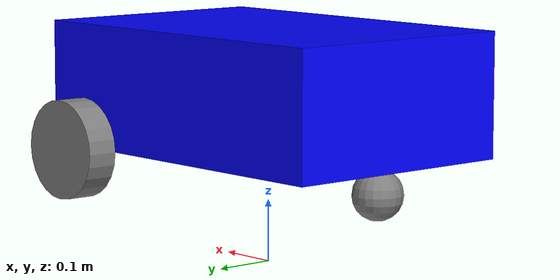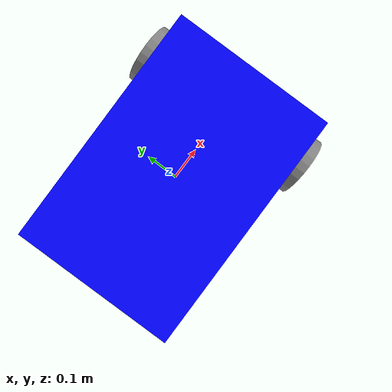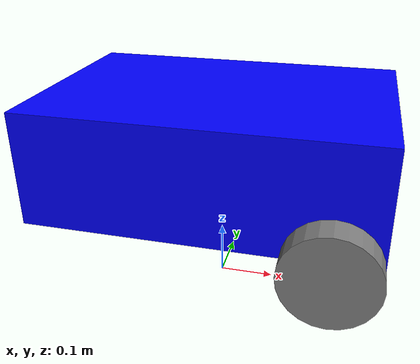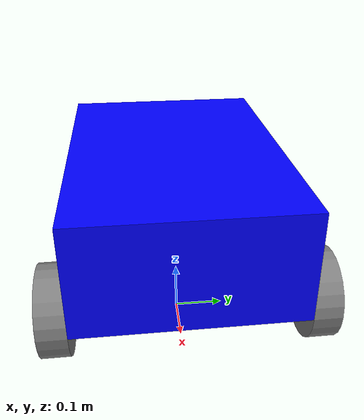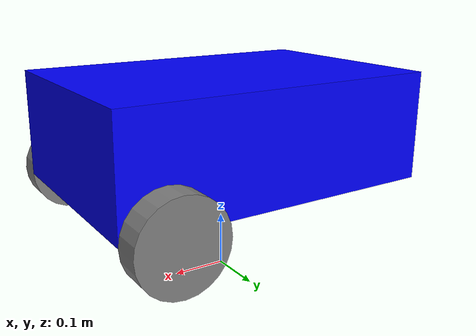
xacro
<?xml version="1.0"?>
<robot name="my_robot" xmlns:xacro="http://www.ros.org/wiki/xacro">

    <xacro:property name="base_length" value="0.6" />
    <xacro:property name="base_width" value="0.4" />
    <xacro:property name="base_height" value="0.2" />
    <material name="blue">
        <color rgba="0 0 1 1" />
    </material>

    <material name="grey">
        <color rgba="0.5 0.5 0.5 1" />
    </material>

    <link name="base_footprint" />

    <link name="base_link">
        <visual>
            <geometry>
                <box size="${base_length} ${base_width} ${base_height}" />
            </geometry>
            <origin xyz="0 0 0.18" rpy="0 0 0" />
            <material name="blue" />
        </visual>
    </link>

    <link name="right_wheel_link">
        <visual>
            <geometry>
                <cylinder radius="0.08" length="0.05" />
            </geometry>
            <origin xyz="0 0 0" rpy="1.571 0 0" />
            <material name="grey" />
        </visual>
    </link>

    <link name="left_wheel_link">
        <visual>
            <geometry>
                <cylinder radius="0.08" length="0.05" />
            </geometry>
            <origin xyz="0 0 0" rpy="1.571 0 0" />
            <material name="grey" />
        </visual>
    </link>

    <link name="caster_wheel_link">
        <visual>
            <geometry>
                <sphere radius="0.04" />
            </geometry>
            <origin xyz="0 0 0" rpy="0 0 0" />
            <material name="grey" />
        </visual>
    </link>

    <joint name="base_joint" type="fixed">
        <parent link="base_footprint" />
        <child link="base_link" />
        <origin xyz="0 0 0.1" rpy="0 0 0"/>
    </joint>

    <joint name="base_right_wheel_joint" type="continuous">
    <parent link="base_link" />
    <child link="right_wheel_link" />
    <origin xyz="0.22 0.225 0.08" rpy="0 0 0" />
    <axis xyz="0 1 0" />
    </joint>

    <joint name="base_left_wheel_joint" type="continuous">
    <parent link="base_link" />
    <child link="left_wheel_link" />
    <origin xyz="0.22 -0.225 0.08" rpy="0 0 0" />
    <axis xyz="0 1 0" />
    </joint>

    <joint name="base_caster_wheel_joint" type="continuous">
        <parent link="base_link" />
        <child link="caster_wheel_link" />
        <origin xyz="-0.25 0 0.04" rpy="0 0 0" />
        <axis xyz="0 1 0" />
        <limit lower="-0.5" upper="0.5" velocity="100" effort="100" />
    </joint>
</robot>
